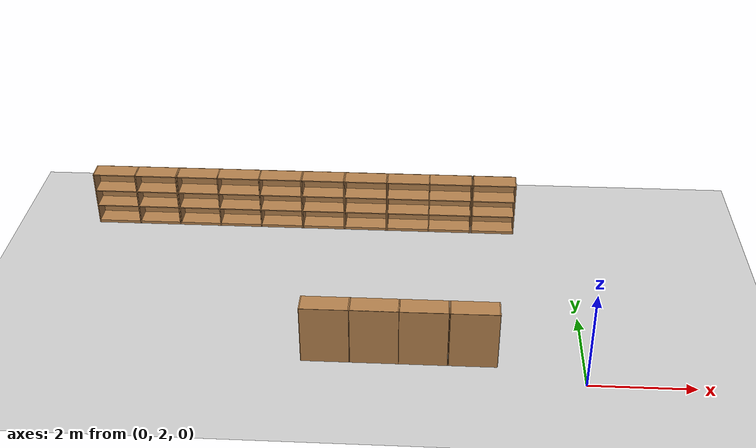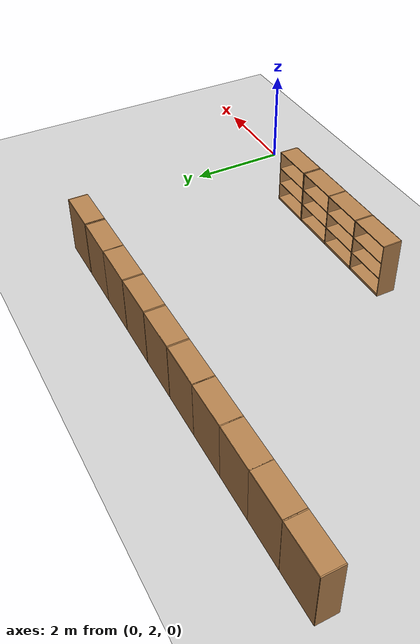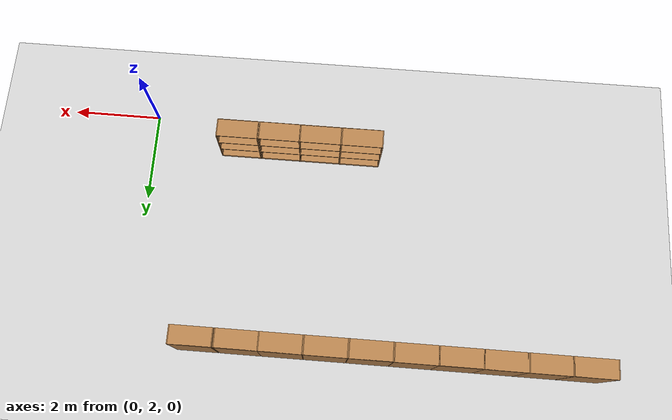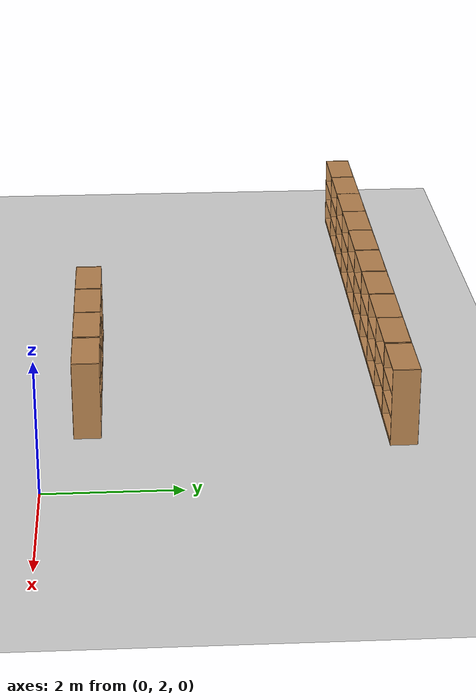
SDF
<sdf version="1.7">
 <world name="default">
  <model name="ground_plane">
   <static>1</static>
   <link name="link">
    <collision name="collision">
     <geometry><plane><normal>0 0 1</normal><size>100 100</size></plane></geometry>
     <surface><friction><ode><mu>100</mu><mu2>50</mu2></ode></friction></surface>
    </collision>
    <visual name="visual">
     <cast_shadows>0</cast_shadows>
     <geometry><plane><normal>0 0 1</normal><size>100 100</size></plane></geometry>
     <material>
      <script><uri>file://media/materials/scripts/gazebo.material</uri><name>Gazebo/Grey</name></script>
     </material>
    </visual>
   </link>
  </model>
  <model name="bookshelf_clone_0_clone_0_clone_clone_clone_0_clone_clone_1_clone_0_clone_0_clone_clone">
   <static>1</static>
   <link name="link">
    <inertial><mass>1</mass></inertial>
    <collision name="back">
     <pose>0 0.005 0.6 0 -0 0</pose>
     <geometry><box><size>0.9 0.01 1.2</size></box></geometry>
    </collision>
    <visual name="visual1">
     <pose>0 0.005 0.6 0 -0 0</pose>
     <geometry><box><size>0.9 0.01 1.2</size></box></geometry>
     <material>
      <script><uri>file://media/materials/scripts/gazebo.material</uri><name>Gazebo/Wood</name></script>
     </material>
    </visual>
    <collision name="left_side">
     <pose>0.45 -0.195 0.6 0 -0 0</pose>
     <geometry><box><size>0.02 0.4 1.2</size></box></geometry>
    </collision>
    <visual name="visual2">
     <pose>0.45 -0.195 0.6 0 -0 0</pose>
     <geometry><box><size>0.02 0.4 1.2</size></box></geometry>
     <material>
      <script><uri>file://media/materials/scripts/gazebo.material</uri><name>Gazebo/Wood</name></script>
     </material>
    </visual>
    <collision name="right_side">
     <pose>-0.45 -0.195 0.6 0 -0 0</pose>
     <geometry><box><size>0.02 0.4 1.2</size></box></geometry>
    </collision>
    <visual name="visual3">
     <pose>-0.45 -0.195 0.6 0 -0 0</pose>
     <geometry><box><size>0.02 0.4 1.2</size></box></geometry>
     <material>
      <script><uri>file://media/materials/scripts/gazebo.material</uri><name>Gazebo/Wood</name></script>
     </material>
    </visual>
    <collision name="bottom">
     <pose>0 -0.195 0.03 0 -0 0</pose>
     <geometry><box><size>0.88 0.4 0.06</size></box></geometry>
    </collision>
    <visual name="visual4">
     <pose>0 -0.195 0.03 0 -0 0</pose>
     <geometry><box><size>0.88 0.4 0.06</size></box></geometry>
     <material>
      <script><uri>file://media/materials/scripts/gazebo.material</uri><name>Gazebo/Wood</name></script>
     </material>
    </visual>
    <collision name="top">
     <pose>0 -0.195 1.19 0 -0 0</pose>
     <geometry><box><size>0.88 0.4 0.02</size></box></geometry>
    </collision>
    <visual name="visual5">
     <pose>0 -0.195 1.19 0 -0 0</pose>
     <geometry><box><size>0.88 0.4 0.02</size></box></geometry>
     <material>
      <script><uri>file://media/materials/scripts/gazebo.material</uri><name>Gazebo/Wood</name></script>
     </material>
    </visual>
    <collision name="low_shelf">
     <pose>0 -0.195 0.43 0 -0 0</pose>
     <geometry><box><size>0.88 0.4 0.02</size></box></geometry>
    </collision>
    <visual name="visual6">
     <pose>0 -0.195 0.43 0 -0 0</pose>
     <geometry><box><size>0.88 0.4 0.02</size></box></geometry>
     <material>
      <script><uri>file://media/materials/scripts/gazebo.material</uri><name>Gazebo/Wood</name></script>
     </material>
    </visual>
    <collision name="high_shelf">
     <pose>0 -0.195 0.8 0 -0 0</pose>
     <geometry><box><size>0.88 0.4 0.02</size></box></geometry>
    </collision>
    <visual name="visual7">
     <pose>0 -0.195 0.8 0 -0 0</pose>
     <geometry><box><size>0.88 0.4 0.02</size></box></geometry>
     <material>
      <script><uri>file://media/materials/scripts/gazebo.material</uri><name>Gazebo/Wood</name></script>
     </material>
    </visual>
   </link>
   <pose>-2.05723 2.43762 0 0 0 -3.14107</pose>
  </model>
  <model name="bookshelf_clone_0_clone_0_clone_clone_clone_0_clone_clone_1_clone_0_clone_0_clone_clone_clone">
   <static>1</static>
   <link name="link">
    <inertial><mass>1</mass></inertial>
    <collision name="back">
     <pose>0 0.005 0.6 0 -0 0</pose>
     <geometry><box><size>0.9 0.01 1.2</size></box></geometry>
    </collision>
    <visual name="visual1">
     <pose>0 0.005 0.6 0 -0 0</pose>
     <geometry><box><size>0.9 0.01 1.2</size></box></geometry>
     <material>
      <script><uri>file://media/materials/scripts/gazebo.material</uri><name>Gazebo/Wood</name></script>
     </material>
    </visual>
    <collision name="left_side">
     <pose>0.45 -0.195 0.6 0 -0 0</pose>
     <geometry><box><size>0.02 0.4 1.2</size></box></geometry>
    </collision>
    <visual name="visual2">
     <pose>0.45 -0.195 0.6 0 -0 0</pose>
     <geometry><box><size>0.02 0.4 1.2</size></box></geometry>
     <material>
      <script><uri>file://media/materials/scripts/gazebo.material</uri><name>Gazebo/Wood</name></script>
     </material>
    </visual>
    <collision name="right_side">
     <pose>-0.45 -0.195 0.6 0 -0 0</pose>
     <geometry><box><size>0.02 0.4 1.2</size></box></geometry>
    </collision>
    <visual name="visual3">
     <pose>-0.45 -0.195 0.6 0 -0 0</pose>
     <geometry><box><size>0.02 0.4 1.2</size></box></geometry>
     <material>
      <script><uri>file://media/materials/scripts/gazebo.material</uri><name>Gazebo/Wood</name></script>
     </material>
    </visual>
    <collision name="bottom">
     <pose>0 -0.195 0.03 0 -0 0</pose>
     <geometry><box><size>0.88 0.4 0.06</size></box></geometry>
    </collision>
    <visual name="visual4">
     <pose>0 -0.195 0.03 0 -0 0</pose>
     <geometry><box><size>0.88 0.4 0.06</size></box></geometry>
     <material>
      <script><uri>file://media/materials/scripts/gazebo.material</uri><name>Gazebo/Wood</name></script>
     </material>
    </visual>
    <collision name="top">
     <pose>0 -0.195 1.19 0 -0 0</pose>
     <geometry><box><size>0.88 0.4 0.02</size></box></geometry>
    </collision>
    <visual name="visual5">
     <pose>0 -0.195 1.19 0 -0 0</pose>
     <geometry><box><size>0.88 0.4 0.02</size></box></geometry>
     <material>
      <script><uri>file://media/materials/scripts/gazebo.material</uri><name>Gazebo/Wood</name></script>
     </material>
    </visual>
    <collision name="low_shelf">
     <pose>0 -0.195 0.43 0 -0 0</pose>
     <geometry><box><size>0.88 0.4 0.02</size></box></geometry>
    </collision>
    <visual name="visual6">
     <pose>0 -0.195 0.43 0 -0 0</pose>
     <geometry><box><size>0.88 0.4 0.02</size></box></geometry>
     <material>
      <script><uri>file://media/materials/scripts/gazebo.material</uri><name>Gazebo/Wood</name></script>
     </material>
    </visual>
    <collision name="high_shelf">
     <pose>0 -0.195 0.8 0 -0 0</pose>
     <geometry><box><size>0.88 0.4 0.02</size></box></geometry>
    </collision>
    <visual name="visual7">
     <pose>0 -0.195 0.8 0 -0 0</pose>
     <geometry><box><size>0.88 0.4 0.02</size></box></geometry>
     <material>
      <script><uri>file://media/materials/scripts/gazebo.material</uri><name>Gazebo/Wood</name></script>
     </material>
    </visual>
   </link>
   <pose>-2.98515 2.43762 0 0 0 -3.14107</pose>
  </model>
  <model name="bookshelf_clone_0_clone_0_clone_clone_clone_0_clone_clone_1_clone_0_clone_0_clone_clone_clone_0">
   <static>1</static>
   <link name="link">
    <inertial><mass>1</mass></inertial>
    <collision name="back">
     <pose>0 0.005 0.6 0 -0 0</pose>
     <geometry><box><size>0.9 0.01 1.2</size></box></geometry>
    </collision>
    <visual name="visual1">
     <pose>0 0.005 0.6 0 -0 0</pose>
     <geometry><box><size>0.9 0.01 1.2</size></box></geometry>
     <material>
      <script><uri>file://media/materials/scripts/gazebo.material</uri><name>Gazebo/Wood</name></script>
     </material>
    </visual>
    <collision name="left_side">
     <pose>0.45 -0.195 0.6 0 -0 0</pose>
     <geometry><box><size>0.02 0.4 1.2</size></box></geometry>
    </collision>
    <visual name="visual2">
     <pose>0.45 -0.195 0.6 0 -0 0</pose>
     <geometry><box><size>0.02 0.4 1.2</size></box></geometry>
     <material>
      <script><uri>file://media/materials/scripts/gazebo.material</uri><name>Gazebo/Wood</name></script>
     </material>
    </visual>
    <collision name="right_side">
     <pose>-0.45 -0.195 0.6 0 -0 0</pose>
     <geometry><box><size>0.02 0.4 1.2</size></box></geometry>
    </collision>
    <visual name="visual3">
     <pose>-0.45 -0.195 0.6 0 -0 0</pose>
     <geometry><box><size>0.02 0.4 1.2</size></box></geometry>
     <material>
      <script><uri>file://media/materials/scripts/gazebo.material</uri><name>Gazebo/Wood</name></script>
     </material>
    </visual>
    <collision name="bottom">
     <pose>0 -0.195 0.03 0 -0 0</pose>
     <geometry><box><size>0.88 0.4 0.06</size></box></geometry>
    </collision>
    <visual name="visual4">
     <pose>0 -0.195 0.03 0 -0 0</pose>
     <geometry><box><size>0.88 0.4 0.06</size></box></geometry>
     <material>
      <script><uri>file://media/materials/scripts/gazebo.material</uri><name>Gazebo/Wood</name></script>
     </material>
    </visual>
    <collision name="top">
     <pose>0 -0.195 1.19 0 -0 0</pose>
     <geometry><box><size>0.88 0.4 0.02</size></box></geometry>
    </collision>
    <visual name="visual5">
     <pose>0 -0.195 1.19 0 -0 0</pose>
     <geometry><box><size>0.88 0.4 0.02</size></box></geometry>
     <material>
      <script><uri>file://media/materials/scripts/gazebo.material</uri><name>Gazebo/Wood</name></script>
     </material>
    </visual>
    <collision name="low_shelf">
     <pose>0 -0.195 0.43 0 -0 0</pose>
     <geometry><box><size>0.88 0.4 0.02</size></box></geometry>
    </collision>
    <visual name="visual6">
     <pose>0 -0.195 0.43 0 -0 0</pose>
     <geometry><box><size>0.88 0.4 0.02</size></box></geometry>
     <material>
      <script><uri>file://media/materials/scripts/gazebo.material</uri><name>Gazebo/Wood</name></script>
     </material>
    </visual>
    <collision name="high_shelf">
     <pose>0 -0.195 0.8 0 -0 0</pose>
     <geometry><box><size>0.88 0.4 0.02</size></box></geometry>
    </collision>
    <visual name="visual7">
     <pose>0 -0.195 0.8 0 -0 0</pose>
     <geometry><box><size>0.88 0.4 0.02</size></box></geometry>
     <material>
      <script><uri>file://media/materials/scripts/gazebo.material</uri><name>Gazebo/Wood</name></script>
     </material>
    </visual>
   </link>
   <pose>-3.89242 2.43762 0 0 0 -3.14107</pose>
  </model>
  <model name="bookshelf_clone_0_clone_0_clone_clone_clone_0_clone_clone_1_clone_0_clone_0_clone_clone_clone_0_clone">
   <static>1</static>
   <link name="link">
    <inertial><mass>1</mass></inertial>
    <collision name="back">
     <pose>0 0.005 0.6 0 -0 0</pose>
     <geometry><box><size>0.9 0.01 1.2</size></box></geometry>
    </collision>
    <visual name="visual1">
     <pose>0 0.005 0.6 0 -0 0</pose>
     <geometry><box><size>0.9 0.01 1.2</size></box></geometry>
     <material>
      <script><uri>file://media/materials/scripts/gazebo.material</uri><name>Gazebo/Wood</name></script>
     </material>
    </visual>
    <collision name="left_side">
     <pose>0.45 -0.195 0.6 0 -0 0</pose>
     <geometry><box><size>0.02 0.4 1.2</size></box></geometry>
    </collision>
    <visual name="visual2">
     <pose>0.45 -0.195 0.6 0 -0 0</pose>
     <geometry><box><size>0.02 0.4 1.2</size></box></geometry>
     <material>
      <script><uri>file://media/materials/scripts/gazebo.material</uri><name>Gazebo/Wood</name></script>
     </material>
    </visual>
    <collision name="right_side">
     <pose>-0.45 -0.195 0.6 0 -0 0</pose>
     <geometry><box><size>0.02 0.4 1.2</size></box></geometry>
    </collision>
    <visual name="visual3">
     <pose>-0.45 -0.195 0.6 0 -0 0</pose>
     <geometry><box><size>0.02 0.4 1.2</size></box></geometry>
     <material>
      <script><uri>file://media/materials/scripts/gazebo.material</uri><name>Gazebo/Wood</name></script>
     </material>
    </visual>
    <collision name="bottom">
     <pose>0 -0.195 0.03 0 -0 0</pose>
     <geometry><box><size>0.88 0.4 0.06</size></box></geometry>
    </collision>
    <visual name="visual4">
     <pose>0 -0.195 0.03 0 -0 0</pose>
     <geometry><box><size>0.88 0.4 0.06</size></box></geometry>
     <material>
      <script><uri>file://media/materials/scripts/gazebo.material</uri><name>Gazebo/Wood</name></script>
     </material>
    </visual>
    <collision name="top">
     <pose>0 -0.195 1.19 0 -0 0</pose>
     <geometry><box><size>0.88 0.4 0.02</size></box></geometry>
    </collision>
    <visual name="visual5">
     <pose>0 -0.195 1.19 0 -0 0</pose>
     <geometry><box><size>0.88 0.4 0.02</size></box></geometry>
     <material>
      <script><uri>file://media/materials/scripts/gazebo.material</uri><name>Gazebo/Wood</name></script>
     </material>
    </visual>
    <collision name="low_shelf">
     <pose>0 -0.195 0.43 0 -0 0</pose>
     <geometry><box><size>0.88 0.4 0.02</size></box></geometry>
    </collision>
    <visual name="visual6">
     <pose>0 -0.195 0.43 0 -0 0</pose>
     <geometry><box><size>0.88 0.4 0.02</size></box></geometry>
     <material>
      <script><uri>file://media/materials/scripts/gazebo.material</uri><name>Gazebo/Wood</name></script>
     </material>
    </visual>
    <collision name="high_shelf">
     <pose>0 -0.195 0.8 0 -0 0</pose>
     <geometry><box><size>0.88 0.4 0.02</size></box></geometry>
    </collision>
    <visual name="visual7">
     <pose>0 -0.195 0.8 0 -0 0</pose>
     <geometry><box><size>0.88 0.4 0.02</size></box></geometry>
     <material>
      <script><uri>file://media/materials/scripts/gazebo.material</uri><name>Gazebo/Wood</name></script>
     </material>
    </visual>
   </link>
   <pose>-4.80715 2.43762 0 0 0 -3.14107</pose>
  </model>
  <model name="bookshelf_clone_0_clone_0_clone_clone_clone_clone_clone_1_clone_clone_clone_clone_clone_clone_clone_clone_clone_clone_0_clone_clone_clone_clone_clone_0_clone_1_clone_0_clone_1_clone_0_clone_clone_clone_clone_clone_clone_0_clone">
   <static>1</static>
   <link name="link">
    <inertial><mass>1</mass></inertial>
    <collision name="back">
     <pose>0 0.005 0.6 0 -0 0</pose>
     <geometry><box><size>0.9 0.01 1.2</size></box></geometry>
    </collision>
    <visual name="visual1">
     <pose>0 0.005 0.6 0 -0 0</pose>
     <geometry><box><size>0.9 0.01 1.2</size></box></geometry>
     <material>
      <script><uri>file://media/materials/scripts/gazebo.material</uri><name>Gazebo/Wood</name></script>
     </material>
    </visual>
    <collision name="left_side">
     <pose>0.45 -0.195 0.6 0 -0 0</pose>
     <geometry><box><size>0.02 0.4 1.2</size></box></geometry>
    </collision>
    <visual name="visual2">
     <pose>0.45 -0.195 0.6 0 -0 0</pose>
     <geometry><box><size>0.02 0.4 1.2</size></box></geometry>
     <material>
      <script><uri>file://media/materials/scripts/gazebo.material</uri><name>Gazebo/Wood</name></script>
     </material>
    </visual>
    <collision name="right_side">
     <pose>-0.45 -0.195 0.6 0 -0 0</pose>
     <geometry><box><size>0.02 0.4 1.2</size></box></geometry>
    </collision>
    <visual name="visual3">
     <pose>-0.45 -0.195 0.6 0 -0 0</pose>
     <geometry><box><size>0.02 0.4 1.2</size></box></geometry>
     <material>
      <script><uri>file://media/materials/scripts/gazebo.material</uri><name>Gazebo/Wood</name></script>
     </material>
    </visual>
    <collision name="bottom">
     <pose>0 -0.195 0.03 0 -0 0</pose>
     <geometry><box><size>0.88 0.4 0.06</size></box></geometry>
    </collision>
    <visual name="visual4">
     <pose>0 -0.195 0.03 0 -0 0</pose>
     <geometry><box><size>0.88 0.4 0.06</size></box></geometry>
     <material>
      <script><uri>file://media/materials/scripts/gazebo.material</uri><name>Gazebo/Wood</name></script>
     </material>
    </visual>
    <collision name="top">
     <pose>0 -0.195 1.19 0 -0 0</pose>
     <geometry><box><size>0.88 0.4 0.02</size></box></geometry>
    </collision>
    <visual name="visual5">
     <pose>0 -0.195 1.19 0 -0 0</pose>
     <geometry><box><size>0.88 0.4 0.02</size></box></geometry>
     <material>
      <script><uri>file://media/materials/scripts/gazebo.material</uri><name>Gazebo/Wood</name></script>
     </material>
    </visual>
    <collision name="low_shelf">
     <pose>0 -0.195 0.43 0 -0 0</pose>
     <geometry><box><size>0.88 0.4 0.02</size></box></geometry>
    </collision>
    <visual name="visual6">
     <pose>0 -0.195 0.43 0 -0 0</pose>
     <geometry><box><size>0.88 0.4 0.02</size></box></geometry>
     <material>
      <script><uri>file://media/materials/scripts/gazebo.material</uri><name>Gazebo/Wood</name></script>
     </material>
    </visual>
    <collision name="high_shelf">
     <pose>0 -0.195 0.8 0 -0 0</pose>
     <geometry><box><size>0.88 0.4 0.02</size></box></geometry>
    </collision>
    <visual name="visual7">
     <pose>0 -0.195 0.8 0 -0 0</pose>
     <geometry><box><size>0.88 0.4 0.02</size></box></geometry>
     <material>
      <script><uri>file://media/materials/scripts/gazebo.material</uri><name>Gazebo/Wood</name></script>
     </material>
    </visual>
   </link>
   <pose>-1.59116 7.38892 0.004614 0 -0 0.000147</pose>
  </model>
  <model name="bookshelf_clone_0_clone_0_clone_clone_clone_clone_clone_1_clone_clone_clone_clone_clone_clone_clone_clone_clone_clone_0_clone_clone_clone_clone_clone_0_clone_1_clone_0_clone_1_clone_0_clone_clone_clone_clone_clone_clone_0_clone_clone">
   <static>1</static>
   <link name="link">
    <inertial><mass>1</mass></inertial>
    <collision name="back">
     <pose>0 0.005 0.6 0 -0 0</pose>
     <geometry><box><size>0.9 0.01 1.2</size></box></geometry>
    </collision>
    <visual name="visual1">
     <pose>0 0.005 0.6 0 -0 0</pose>
     <geometry><box><size>0.9 0.01 1.2</size></box></geometry>
     <material>
      <script><uri>file://media/materials/scripts/gazebo.material</uri><name>Gazebo/Wood</name></script>
     </material>
    </visual>
    <collision name="left_side">
     <pose>0.45 -0.195 0.6 0 -0 0</pose>
     <geometry><box><size>0.02 0.4 1.2</size></box></geometry>
    </collision>
    <visual name="visual2">
     <pose>0.45 -0.195 0.6 0 -0 0</pose>
     <geometry><box><size>0.02 0.4 1.2</size></box></geometry>
     <material>
      <script><uri>file://media/materials/scripts/gazebo.material</uri><name>Gazebo/Wood</name></script>
     </material>
    </visual>
    <collision name="right_side">
     <pose>-0.45 -0.195 0.6 0 -0 0</pose>
     <geometry><box><size>0.02 0.4 1.2</size></box></geometry>
    </collision>
    <visual name="visual3">
     <pose>-0.45 -0.195 0.6 0 -0 0</pose>
     <geometry><box><size>0.02 0.4 1.2</size></box></geometry>
     <material>
      <script><uri>file://media/materials/scripts/gazebo.material</uri><name>Gazebo/Wood</name></script>
     </material>
    </visual>
    <collision name="bottom">
     <pose>0 -0.195 0.03 0 -0 0</pose>
     <geometry><box><size>0.88 0.4 0.06</size></box></geometry>
    </collision>
    <visual name="visual4">
     <pose>0 -0.195 0.03 0 -0 0</pose>
     <geometry><box><size>0.88 0.4 0.06</size></box></geometry>
     <material>
      <script><uri>file://media/materials/scripts/gazebo.material</uri><name>Gazebo/Wood</name></script>
     </material>
    </visual>
    <collision name="top">
     <pose>0 -0.195 1.19 0 -0 0</pose>
     <geometry><box><size>0.88 0.4 0.02</size></box></geometry>
    </collision>
    <visual name="visual5">
     <pose>0 -0.195 1.19 0 -0 0</pose>
     <geometry><box><size>0.88 0.4 0.02</size></box></geometry>
     <material>
      <script><uri>file://media/materials/scripts/gazebo.material</uri><name>Gazebo/Wood</name></script>
     </material>
    </visual>
    <collision name="low_shelf">
     <pose>0 -0.195 0.43 0 -0 0</pose>
     <geometry><box><size>0.88 0.4 0.02</size></box></geometry>
    </collision>
    <visual name="visual6">
     <pose>0 -0.195 0.43 0 -0 0</pose>
     <geometry><box><size>0.88 0.4 0.02</size></box></geometry>
     <material>
      <script><uri>file://media/materials/scripts/gazebo.material</uri><name>Gazebo/Wood</name></script>
     </material>
    </visual>
    <collision name="high_shelf">
     <pose>0 -0.195 0.8 0 -0 0</pose>
     <geometry><box><size>0.88 0.4 0.02</size></box></geometry>
    </collision>
    <visual name="visual7">
     <pose>0 -0.195 0.8 0 -0 0</pose>
     <geometry><box><size>0.88 0.4 0.02</size></box></geometry>
     <material>
      <script><uri>file://media/materials/scripts/gazebo.material</uri><name>Gazebo/Wood</name></script>
     </material>
    </visual>
   </link>
   <pose>-2.52267 7.38892 0.004614 0 -0 0.000147</pose>
  </model>
  <model name="bookshelf_clone_0_clone_0_clone_clone_clone_clone_clone_1_clone_clone_clone_clone_clone_clone_clone_clone_clone_clone_0_clone_clone_clone_clone_clone_0_clone_1_clone_0_clone_1_clone_0_clone_clone_clone_clone_clone_clone_0_clone_clone_clone">
   <static>1</static>
   <link name="link">
    <inertial><mass>1</mass></inertial>
    <collision name="back">
     <pose>0 0.005 0.6 0 -0 0</pose>
     <geometry><box><size>0.9 0.01 1.2</size></box></geometry>
    </collision>
    <visual name="visual1">
     <pose>0 0.005 0.6 0 -0 0</pose>
     <geometry><box><size>0.9 0.01 1.2</size></box></geometry>
     <material>
      <script><uri>file://media/materials/scripts/gazebo.material</uri><name>Gazebo/Wood</name></script>
     </material>
    </visual>
    <collision name="left_side">
     <pose>0.45 -0.195 0.6 0 -0 0</pose>
     <geometry><box><size>0.02 0.4 1.2</size></box></geometry>
    </collision>
    <visual name="visual2">
     <pose>0.45 -0.195 0.6 0 -0 0</pose>
     <geometry><box><size>0.02 0.4 1.2</size></box></geometry>
     <material>
      <script><uri>file://media/materials/scripts/gazebo.material</uri><name>Gazebo/Wood</name></script>
     </material>
    </visual>
    <collision name="right_side">
     <pose>-0.45 -0.195 0.6 0 -0 0</pose>
     <geometry><box><size>0.02 0.4 1.2</size></box></geometry>
    </collision>
    <visual name="visual3">
     <pose>-0.45 -0.195 0.6 0 -0 0</pose>
     <geometry><box><size>0.02 0.4 1.2</size></box></geometry>
     <material>
      <script><uri>file://media/materials/scripts/gazebo.material</uri><name>Gazebo/Wood</name></script>
     </material>
    </visual>
    <collision name="bottom">
     <pose>0 -0.195 0.03 0 -0 0</pose>
     <geometry><box><size>0.88 0.4 0.06</size></box></geometry>
    </collision>
    <visual name="visual4">
     <pose>0 -0.195 0.03 0 -0 0</pose>
     <geometry><box><size>0.88 0.4 0.06</size></box></geometry>
     <material>
      <script><uri>file://media/materials/scripts/gazebo.material</uri><name>Gazebo/Wood</name></script>
     </material>
    </visual>
    <collision name="top">
     <pose>0 -0.195 1.19 0 -0 0</pose>
     <geometry><box><size>0.88 0.4 0.02</size></box></geometry>
    </collision>
    <visual name="visual5">
     <pose>0 -0.195 1.19 0 -0 0</pose>
     <geometry><box><size>0.88 0.4 0.02</size></box></geometry>
     <material>
      <script><uri>file://media/materials/scripts/gazebo.material</uri><name>Gazebo/Wood</name></script>
     </material>
    </visual>
    <collision name="low_shelf">
     <pose>0 -0.195 0.43 0 -0 0</pose>
     <geometry><box><size>0.88 0.4 0.02</size></box></geometry>
    </collision>
    <visual name="visual6">
     <pose>0 -0.195 0.43 0 -0 0</pose>
     <geometry><box><size>0.88 0.4 0.02</size></box></geometry>
     <material>
      <script><uri>file://media/materials/scripts/gazebo.material</uri><name>Gazebo/Wood</name></script>
     </material>
    </visual>
    <collision name="high_shelf">
     <pose>0 -0.195 0.8 0 -0 0</pose>
     <geometry><box><size>0.88 0.4 0.02</size></box></geometry>
    </collision>
    <visual name="visual7">
     <pose>0 -0.195 0.8 0 -0 0</pose>
     <geometry><box><size>0.88 0.4 0.02</size></box></geometry>
     <material>
      <script><uri>file://media/materials/scripts/gazebo.material</uri><name>Gazebo/Wood</name></script>
     </material>
    </visual>
   </link>
   <pose>-3.4231 7.38892 0.004614 0 -0 0.000147</pose>
  </model>
  <model name="bookshelf_clone_0_clone_0_clone_clone_clone_clone_clone_1_clone_clone_clone_clone_clone_clone_clone_clone_clone_clone_0_clone_clone_clone_clone_clone_0_clone_1_clone_0_clone_1_clone_0_clone_clone_clone_clone_clone_clone_0_clone_clone_clone_0">
   <static>1</static>
   <link name="link">
    <inertial><mass>1</mass></inertial>
    <collision name="back">
     <pose>0 0.005 0.6 0 -0 0</pose>
     <geometry><box><size>0.9 0.01 1.2</size></box></geometry>
    </collision>
    <visual name="visual1">
     <pose>0 0.005 0.6 0 -0 0</pose>
     <geometry><box><size>0.9 0.01 1.2</size></box></geometry>
     <material>
      <script><uri>file://media/materials/scripts/gazebo.material</uri><name>Gazebo/Wood</name></script>
     </material>
    </visual>
    <collision name="left_side">
     <pose>0.45 -0.195 0.6 0 -0 0</pose>
     <geometry><box><size>0.02 0.4 1.2</size></box></geometry>
    </collision>
    <visual name="visual2">
     <pose>0.45 -0.195 0.6 0 -0 0</pose>
     <geometry><box><size>0.02 0.4 1.2</size></box></geometry>
     <material>
      <script><uri>file://media/materials/scripts/gazebo.material</uri><name>Gazebo/Wood</name></script>
     </material>
    </visual>
    <collision name="right_side">
     <pose>-0.45 -0.195 0.6 0 -0 0</pose>
     <geometry><box><size>0.02 0.4 1.2</size></box></geometry>
    </collision>
    <visual name="visual3">
     <pose>-0.45 -0.195 0.6 0 -0 0</pose>
     <geometry><box><size>0.02 0.4 1.2</size></box></geometry>
     <material>
      <script><uri>file://media/materials/scripts/gazebo.material</uri><name>Gazebo/Wood</name></script>
     </material>
    </visual>
    <collision name="bottom">
     <pose>0 -0.195 0.03 0 -0 0</pose>
     <geometry><box><size>0.88 0.4 0.06</size></box></geometry>
    </collision>
    <visual name="visual4">
     <pose>0 -0.195 0.03 0 -0 0</pose>
     <geometry><box><size>0.88 0.4 0.06</size></box></geometry>
     <material>
      <script><uri>file://media/materials/scripts/gazebo.material</uri><name>Gazebo/Wood</name></script>
     </material>
    </visual>
    <collision name="top">
     <pose>0 -0.195 1.19 0 -0 0</pose>
     <geometry><box><size>0.88 0.4 0.02</size></box></geometry>
    </collision>
    <visual name="visual5">
     <pose>0 -0.195 1.19 0 -0 0</pose>
     <geometry><box><size>0.88 0.4 0.02</size></box></geometry>
     <material>
      <script><uri>file://media/materials/scripts/gazebo.material</uri><name>Gazebo/Wood</name></script>
     </material>
    </visual>
    <collision name="low_shelf">
     <pose>0 -0.195 0.43 0 -0 0</pose>
     <geometry><box><size>0.88 0.4 0.02</size></box></geometry>
    </collision>
    <visual name="visual6">
     <pose>0 -0.195 0.43 0 -0 0</pose>
     <geometry><box><size>0.88 0.4 0.02</size></box></geometry>
     <material>
      <script><uri>file://media/materials/scripts/gazebo.material</uri><name>Gazebo/Wood</name></script>
     </material>
    </visual>
    <collision name="high_shelf">
     <pose>0 -0.195 0.8 0 -0 0</pose>
     <geometry><box><size>0.88 0.4 0.02</size></box></geometry>
    </collision>
    <visual name="visual7">
     <pose>0 -0.195 0.8 0 -0 0</pose>
     <geometry><box><size>0.88 0.4 0.02</size></box></geometry>
     <material>
      <script><uri>file://media/materials/scripts/gazebo.material</uri><name>Gazebo/Wood</name></script>
     </material>
    </visual>
   </link>
   <pose>-4.34011 7.38892 0.004614 0 -0 0.000147</pose>
  </model>
  <model name="bookshelf_clone_0_clone_0_clone_clone_clone_clone_clone_1_clone_clone_clone_clone_clone_clone_clone_clone_clone_clone_0_clone_clone_clone_clone_clone_0_clone_1_clone_0_clone_1_clone_0_clone_clone_clone_clone_clone_clone_0_clone_clone_clone_1">
   <static>1</static>
   <link name="link">
    <inertial><mass>1</mass></inertial>
    <collision name="back">
     <pose>0 0.005 0.6 0 -0 0</pose>
     <geometry><box><size>0.9 0.01 1.2</size></box></geometry>
    </collision>
    <visual name="visual1">
     <pose>0 0.005 0.6 0 -0 0</pose>
     <geometry><box><size>0.9 0.01 1.2</size></box></geometry>
     <material>
      <script><uri>file://media/materials/scripts/gazebo.material</uri><name>Gazebo/Wood</name></script>
     </material>
    </visual>
    <collision name="left_side">
     <pose>0.45 -0.195 0.6 0 -0 0</pose>
     <geometry><box><size>0.02 0.4 1.2</size></box></geometry>
    </collision>
    <visual name="visual2">
     <pose>0.45 -0.195 0.6 0 -0 0</pose>
     <geometry><box><size>0.02 0.4 1.2</size></box></geometry>
     <material>
      <script><uri>file://media/materials/scripts/gazebo.material</uri><name>Gazebo/Wood</name></script>
     </material>
    </visual>
    <collision name="right_side">
     <pose>-0.45 -0.195 0.6 0 -0 0</pose>
     <geometry><box><size>0.02 0.4 1.2</size></box></geometry>
    </collision>
    <visual name="visual3">
     <pose>-0.45 -0.195 0.6 0 -0 0</pose>
     <geometry><box><size>0.02 0.4 1.2</size></box></geometry>
     <material>
      <script><uri>file://media/materials/scripts/gazebo.material</uri><name>Gazebo/Wood</name></script>
     </material>
    </visual>
    <collision name="bottom">
     <pose>0 -0.195 0.03 0 -0 0</pose>
     <geometry><box><size>0.88 0.4 0.06</size></box></geometry>
    </collision>
    <visual name="visual4">
     <pose>0 -0.195 0.03 0 -0 0</pose>
     <geometry><box><size>0.88 0.4 0.06</size></box></geometry>
     <material>
      <script><uri>file://media/materials/scripts/gazebo.material</uri><name>Gazebo/Wood</name></script>
     </material>
    </visual>
    <collision name="top">
     <pose>0 -0.195 1.19 0 -0 0</pose>
     <geometry><box><size>0.88 0.4 0.02</size></box></geometry>
    </collision>
    <visual name="visual5">
     <pose>0 -0.195 1.19 0 -0 0</pose>
     <geometry><box><size>0.88 0.4 0.02</size></box></geometry>
     <material>
      <script><uri>file://media/materials/scripts/gazebo.material</uri><name>Gazebo/Wood</name></script>
     </material>
    </visual>
    <collision name="low_shelf">
     <pose>0 -0.195 0.43 0 -0 0</pose>
     <geometry><box><size>0.88 0.4 0.02</size></box></geometry>
    </collision>
    <visual name="visual6">
     <pose>0 -0.195 0.43 0 -0 0</pose>
     <geometry><box><size>0.88 0.4 0.02</size></box></geometry>
     <material>
      <script><uri>file://media/materials/scripts/gazebo.material</uri><name>Gazebo/Wood</name></script>
     </material>
    </visual>
    <collision name="high_shelf">
     <pose>0 -0.195 0.8 0 -0 0</pose>
     <geometry><box><size>0.88 0.4 0.02</size></box></geometry>
    </collision>
    <visual name="visual7">
     <pose>0 -0.195 0.8 0 -0 0</pose>
     <geometry><box><size>0.88 0.4 0.02</size></box></geometry>
     <material>
      <script><uri>file://media/materials/scripts/gazebo.material</uri><name>Gazebo/Wood</name></script>
     </material>
    </visual>
   </link>
   <pose>-5.25907 7.38892 0.004614 0 -0 0.000147</pose>
  </model>
  <model name="bookshelf_clone_0_clone_0_clone_clone_clone_clone_clone_1_clone_clone_clone_clone_clone_clone_clone_clone_clone_clone_0_clone_clone_clone_clone_clone_0_clone_1_clone_0_clone_1_clone_0_clone_clone_clone_clone_clone_clone_0_clone_clone_clone_2">
   <static>1</static>
   <link name="link">
    <inertial><mass>1</mass></inertial>
    <collision name="back">
     <pose>0 0.005 0.6 0 -0 0</pose>
     <geometry><box><size>0.9 0.01 1.2</size></box></geometry>
    </collision>
    <visual name="visual1">
     <pose>0 0.005 0.6 0 -0 0</pose>
     <geometry><box><size>0.9 0.01 1.2</size></box></geometry>
     <material>
      <script><uri>file://media/materials/scripts/gazebo.material</uri><name>Gazebo/Wood</name></script>
     </material>
    </visual>
    <collision name="left_side">
     <pose>0.45 -0.195 0.6 0 -0 0</pose>
     <geometry><box><size>0.02 0.4 1.2</size></box></geometry>
    </collision>
    <visual name="visual2">
     <pose>0.45 -0.195 0.6 0 -0 0</pose>
     <geometry><box><size>0.02 0.4 1.2</size></box></geometry>
     <material>
      <script><uri>file://media/materials/scripts/gazebo.material</uri><name>Gazebo/Wood</name></script>
     </material>
    </visual>
    <collision name="right_side">
     <pose>-0.45 -0.195 0.6 0 -0 0</pose>
     <geometry><box><size>0.02 0.4 1.2</size></box></geometry>
    </collision>
    <visual name="visual3">
     <pose>-0.45 -0.195 0.6 0 -0 0</pose>
     <geometry><box><size>0.02 0.4 1.2</size></box></geometry>
     <material>
      <script><uri>file://media/materials/scripts/gazebo.material</uri><name>Gazebo/Wood</name></script>
     </material>
    </visual>
    <collision name="bottom">
     <pose>0 -0.195 0.03 0 -0 0</pose>
     <geometry><box><size>0.88 0.4 0.06</size></box></geometry>
    </collision>
    <visual name="visual4">
     <pose>0 -0.195 0.03 0 -0 0</pose>
     <geometry><box><size>0.88 0.4 0.06</size></box></geometry>
     <material>
      <script><uri>file://media/materials/scripts/gazebo.material</uri><name>Gazebo/Wood</name></script>
     </material>
    </visual>
    <collision name="top">
     <pose>0 -0.195 1.19 0 -0 0</pose>
     <geometry><box><size>0.88 0.4 0.02</size></box></geometry>
    </collision>
    <visual name="visual5">
     <pose>0 -0.195 1.19 0 -0 0</pose>
     <geometry><box><size>0.88 0.4 0.02</size></box></geometry>
     <material>
      <script><uri>file://media/materials/scripts/gazebo.material</uri><name>Gazebo/Wood</name></script>
     </material>
    </visual>
    <collision name="low_shelf">
     <pose>0 -0.195 0.43 0 -0 0</pose>
     <geometry><box><size>0.88 0.4 0.02</size></box></geometry>
    </collision>
    <visual name="visual6">
     <pose>0 -0.195 0.43 0 -0 0</pose>
     <geometry><box><size>0.88 0.4 0.02</size></box></geometry>
     <material>
      <script><uri>file://media/materials/scripts/gazebo.material</uri><name>Gazebo/Wood</name></script>
     </material>
    </visual>
    <collision name="high_shelf">
     <pose>0 -0.195 0.8 0 -0 0</pose>
     <geometry><box><size>0.88 0.4 0.02</size></box></geometry>
    </collision>
    <visual name="visual7">
     <pose>0 -0.195 0.8 0 -0 0</pose>
     <geometry><box><size>0.88 0.4 0.02</size></box></geometry>
     <material>
      <script><uri>file://media/materials/scripts/gazebo.material</uri><name>Gazebo/Wood</name></script>
     </material>
    </visual>
   </link>
   <pose>-6.17581 7.38892 0.004614 0 -0 0.000147</pose>
  </model>
  <model name="bookshelf_clone_0_clone_0_clone_clone_clone_clone_clone_1_clone_clone_clone_clone_clone_clone_clone_clone_clone_clone_0_clone_clone_clone_clone_clone_0_clone_1_clone_0_clone_1_clone_0_clone_clone_clone_clone_clone_clone_0_clone_clone_clone_3">
   <static>1</static>
   <link name="link">
    <inertial><mass>1</mass></inertial>
    <collision name="back">
     <pose>0 0.005 0.6 0 -0 0</pose>
     <geometry><box><size>0.9 0.01 1.2</size></box></geometry>
    </collision>
    <visual name="visual1">
     <pose>0 0.005 0.6 0 -0 0</pose>
     <geometry><box><size>0.9 0.01 1.2</size></box></geometry>
     <material>
      <script><uri>file://media/materials/scripts/gazebo.material</uri><name>Gazebo/Wood</name></script>
     </material>
    </visual>
    <collision name="left_side">
     <pose>0.45 -0.195 0.6 0 -0 0</pose>
     <geometry><box><size>0.02 0.4 1.2</size></box></geometry>
    </collision>
    <visual name="visual2">
     <pose>0.45 -0.195 0.6 0 -0 0</pose>
     <geometry><box><size>0.02 0.4 1.2</size></box></geometry>
     <material>
      <script><uri>file://media/materials/scripts/gazebo.material</uri><name>Gazebo/Wood</name></script>
     </material>
    </visual>
    <collision name="right_side">
     <pose>-0.45 -0.195 0.6 0 -0 0</pose>
     <geometry><box><size>0.02 0.4 1.2</size></box></geometry>
    </collision>
    <visual name="visual3">
     <pose>-0.45 -0.195 0.6 0 -0 0</pose>
     <geometry><box><size>0.02 0.4 1.2</size></box></geometry>
     <material>
      <script><uri>file://media/materials/scripts/gazebo.material</uri><name>Gazebo/Wood</name></script>
     </material>
    </visual>
    <collision name="bottom">
     <pose>0 -0.195 0.03 0 -0 0</pose>
     <geometry><box><size>0.88 0.4 0.06</size></box></geometry>
    </collision>
    <visual name="visual4">
     <pose>0 -0.195 0.03 0 -0 0</pose>
     <geometry><box><size>0.88 0.4 0.06</size></box></geometry>
     <material>
      <script><uri>file://media/materials/scripts/gazebo.material</uri><name>Gazebo/Wood</name></script>
     </material>
    </visual>
    <collision name="top">
     <pose>0 -0.195 1.19 0 -0 0</pose>
     <geometry><box><size>0.88 0.4 0.02</size></box></geometry>
    </collision>
    <visual name="visual5">
     <pose>0 -0.195 1.19 0 -0 0</pose>
     <geometry><box><size>0.88 0.4 0.02</size></box></geometry>
     <material>
      <script><uri>file://media/materials/scripts/gazebo.material</uri><name>Gazebo/Wood</name></script>
     </material>
    </visual>
    <collision name="low_shelf">
     <pose>0 -0.195 0.43 0 -0 0</pose>
     <geometry><box><size>0.88 0.4 0.02</size></box></geometry>
    </collision>
    <visual name="visual6">
     <pose>0 -0.195 0.43 0 -0 0</pose>
     <geometry><box><size>0.88 0.4 0.02</size></box></geometry>
     <material>
      <script><uri>file://media/materials/scripts/gazebo.material</uri><name>Gazebo/Wood</name></script>
     </material>
    </visual>
    <collision name="high_shelf">
     <pose>0 -0.195 0.8 0 -0 0</pose>
     <geometry><box><size>0.88 0.4 0.02</size></box></geometry>
    </collision>
    <visual name="visual7">
     <pose>0 -0.195 0.8 0 -0 0</pose>
     <geometry><box><size>0.88 0.4 0.02</size></box></geometry>
     <material>
      <script><uri>file://media/materials/scripts/gazebo.material</uri><name>Gazebo/Wood</name></script>
     </material>
    </visual>
   </link>
   <pose>-7.0784 7.38892 0.004614 0 -0 0.000147</pose>
  </model>
  <model name="bookshelf_clone_0_clone_0_clone_clone_clone_clone_clone_1_clone_clone_clone_clone_clone_clone_clone_clone_clone_clone_0_clone_clone_clone_clone_clone_0_clone_1_clone_0_clone_1_clone_0_clone_clone_clone_clone_clone_clone_0_clone_clone_clone_4">
   <static>1</static>
   <link name="link">
    <inertial><mass>1</mass></inertial>
    <collision name="back">
     <pose>0 0.005 0.6 0 -0 0</pose>
     <geometry><box><size>0.9 0.01 1.2</size></box></geometry>
    </collision>
    <visual name="visual1">
     <pose>0 0.005 0.6 0 -0 0</pose>
     <geometry><box><size>0.9 0.01 1.2</size></box></geometry>
     <material>
      <script><uri>file://media/materials/scripts/gazebo.material</uri><name>Gazebo/Wood</name></script>
     </material>
    </visual>
    <collision name="left_side">
     <pose>0.45 -0.195 0.6 0 -0 0</pose>
     <geometry><box><size>0.02 0.4 1.2</size></box></geometry>
    </collision>
    <visual name="visual2">
     <pose>0.45 -0.195 0.6 0 -0 0</pose>
     <geometry><box><size>0.02 0.4 1.2</size></box></geometry>
     <material>
      <script><uri>file://media/materials/scripts/gazebo.material</uri><name>Gazebo/Wood</name></script>
     </material>
    </visual>
    <collision name="right_side">
     <pose>-0.45 -0.195 0.6 0 -0 0</pose>
     <geometry><box><size>0.02 0.4 1.2</size></box></geometry>
    </collision>
    <visual name="visual3">
     <pose>-0.45 -0.195 0.6 0 -0 0</pose>
     <geometry><box><size>0.02 0.4 1.2</size></box></geometry>
     <material>
      <script><uri>file://media/materials/scripts/gazebo.material</uri><name>Gazebo/Wood</name></script>
     </material>
    </visual>
    <collision name="bottom">
     <pose>0 -0.195 0.03 0 -0 0</pose>
     <geometry><box><size>0.88 0.4 0.06</size></box></geometry>
    </collision>
    <visual name="visual4">
     <pose>0 -0.195 0.03 0 -0 0</pose>
     <geometry><box><size>0.88 0.4 0.06</size></box></geometry>
     <material>
      <script><uri>file://media/materials/scripts/gazebo.material</uri><name>Gazebo/Wood</name></script>
     </material>
    </visual>
    <collision name="top">
     <pose>0 -0.195 1.19 0 -0 0</pose>
     <geometry><box><size>0.88 0.4 0.02</size></box></geometry>
    </collision>
    <visual name="visual5">
     <pose>0 -0.195 1.19 0 -0 0</pose>
     <geometry><box><size>0.88 0.4 0.02</size></box></geometry>
     <material>
      <script><uri>file://media/materials/scripts/gazebo.material</uri><name>Gazebo/Wood</name></script>
     </material>
    </visual>
    <collision name="low_shelf">
     <pose>0 -0.195 0.43 0 -0 0</pose>
     <geometry><box><size>0.88 0.4 0.02</size></box></geometry>
    </collision>
    <visual name="visual6">
     <pose>0 -0.195 0.43 0 -0 0</pose>
     <geometry><box><size>0.88 0.4 0.02</size></box></geometry>
     <material>
      <script><uri>file://media/materials/scripts/gazebo.material</uri><name>Gazebo/Wood</name></script>
     </material>
    </visual>
    <collision name="high_shelf">
     <pose>0 -0.195 0.8 0 -0 0</pose>
     <geometry><box><size>0.88 0.4 0.02</size></box></geometry>
    </collision>
    <visual name="visual7">
     <pose>0 -0.195 0.8 0 -0 0</pose>
     <geometry><box><size>0.88 0.4 0.02</size></box></geometry>
     <material>
      <script><uri>file://media/materials/scripts/gazebo.material</uri><name>Gazebo/Wood</name></script>
     </material>
    </visual>
   </link>
   <pose>-7.97834 7.38892 0.004614 0 -0 0.000147</pose>
  </model>
  <model name="bookshelf_clone_0_clone_0_clone_clone_clone_clone_clone_1_clone_clone_clone_clone_clone_clone_clone_clone_clone_clone_0_clone_clone_clone_clone_clone_0_clone_1_clone_0_clone_1_clone_0_clone_clone_clone_clone_clone_clone_0_clone_clone_clone_5">
   <static>1</static>
   <link name="link">
    <inertial><mass>1</mass></inertial>
    <collision name="back">
     <pose>0 0.005 0.6 0 -0 0</pose>
     <geometry><box><size>0.9 0.01 1.2</size></box></geometry>
    </collision>
    <visual name="visual1">
     <pose>0 0.005 0.6 0 -0 0</pose>
     <geometry><box><size>0.9 0.01 1.2</size></box></geometry>
     <material>
      <script><uri>file://media/materials/scripts/gazebo.material</uri><name>Gazebo/Wood</name></script>
     </material>
    </visual>
    <collision name="left_side">
     <pose>0.45 -0.195 0.6 0 -0 0</pose>
     <geometry><box><size>0.02 0.4 1.2</size></box></geometry>
    </collision>
    <visual name="visual2">
     <pose>0.45 -0.195 0.6 0 -0 0</pose>
     <geometry><box><size>0.02 0.4 1.2</size></box></geometry>
     <material>
      <script><uri>file://media/materials/scripts/gazebo.material</uri><name>Gazebo/Wood</name></script>
     </material>
    </visual>
    <collision name="right_side">
     <pose>-0.45 -0.195 0.6 0 -0 0</pose>
     <geometry><box><size>0.02 0.4 1.2</size></box></geometry>
    </collision>
    <visual name="visual3">
     <pose>-0.45 -0.195 0.6 0 -0 0</pose>
     <geometry><box><size>0.02 0.4 1.2</size></box></geometry>
     <material>
      <script><uri>file://media/materials/scripts/gazebo.material</uri><name>Gazebo/Wood</name></script>
     </material>
    </visual>
    <collision name="bottom">
     <pose>0 -0.195 0.03 0 -0 0</pose>
     <geometry><box><size>0.88 0.4 0.06</size></box></geometry>
    </collision>
    <visual name="visual4">
     <pose>0 -0.195 0.03 0 -0 0</pose>
     <geometry><box><size>0.88 0.4 0.06</size></box></geometry>
     <material>
      <script><uri>file://media/materials/scripts/gazebo.material</uri><name>Gazebo/Wood</name></script>
     </material>
    </visual>
    <collision name="top">
     <pose>0 -0.195 1.19 0 -0 0</pose>
     <geometry><box><size>0.88 0.4 0.02</size></box></geometry>
    </collision>
    <visual name="visual5">
     <pose>0 -0.195 1.19 0 -0 0</pose>
     <geometry><box><size>0.88 0.4 0.02</size></box></geometry>
     <material>
      <script><uri>file://media/materials/scripts/gazebo.material</uri><name>Gazebo/Wood</name></script>
     </material>
    </visual>
    <collision name="low_shelf">
     <pose>0 -0.195 0.43 0 -0 0</pose>
     <geometry><box><size>0.88 0.4 0.02</size></box></geometry>
    </collision>
    <visual name="visual6">
     <pose>0 -0.195 0.43 0 -0 0</pose>
     <geometry><box><size>0.88 0.4 0.02</size></box></geometry>
     <material>
      <script><uri>file://media/materials/scripts/gazebo.material</uri><name>Gazebo/Wood</name></script>
     </material>
    </visual>
    <collision name="high_shelf">
     <pose>0 -0.195 0.8 0 -0 0</pose>
     <geometry><box><size>0.88 0.4 0.02</size></box></geometry>
    </collision>
    <visual name="visual7">
     <pose>0 -0.195 0.8 0 -0 0</pose>
     <geometry><box><size>0.88 0.4 0.02</size></box></geometry>
     <material>
      <script><uri>file://media/materials/scripts/gazebo.material</uri><name>Gazebo/Wood</name></script>
     </material>
    </visual>
   </link>
   <pose>-8.85254 7.38892 0.004614 0 -0 0.000147</pose>
  </model>
  <model name="bookshelf_clone_0_clone_0_clone_clone_clone_clone_clone_1_clone_clone_clone_clone_clone_clone_clone_clone_clone_clone_0_clone_clone_clone_clone_clone_0_clone_1_clone_0_clone_1_clone_0_clone_clone_clone_clone_clone_clone_0_clone_clone_clone_6">
   <static>1</static>
   <link name="link">
    <inertial><mass>1</mass></inertial>
    <collision name="back">
     <pose>0 0.005 0.6 0 -0 0</pose>
     <geometry><box><size>0.9 0.01 1.2</size></box></geometry>
    </collision>
    <visual name="visual1">
     <pose>0 0.005 0.6 0 -0 0</pose>
     <geometry><box><size>0.9 0.01 1.2</size></box></geometry>
     <material>
      <script><uri>file://media/materials/scripts/gazebo.material</uri><name>Gazebo/Wood</name></script>
     </material>
    </visual>
    <collision name="left_side">
     <pose>0.45 -0.195 0.6 0 -0 0</pose>
     <geometry><box><size>0.02 0.4 1.2</size></box></geometry>
    </collision>
    <visual name="visual2">
     <pose>0.45 -0.195 0.6 0 -0 0</pose>
     <geometry><box><size>0.02 0.4 1.2</size></box></geometry>
     <material>
      <script><uri>file://media/materials/scripts/gazebo.material</uri><name>Gazebo/Wood</name></script>
     </material>
    </visual>
    <collision name="right_side">
     <pose>-0.45 -0.195 0.6 0 -0 0</pose>
     <geometry><box><size>0.02 0.4 1.2</size></box></geometry>
    </collision>
    <visual name="visual3">
     <pose>-0.45 -0.195 0.6 0 -0 0</pose>
     <geometry><box><size>0.02 0.4 1.2</size></box></geometry>
     <material>
      <script><uri>file://media/materials/scripts/gazebo.material</uri><name>Gazebo/Wood</name></script>
     </material>
    </visual>
    <collision name="bottom">
     <pose>0 -0.195 0.03 0 -0 0</pose>
     <geometry><box><size>0.88 0.4 0.06</size></box></geometry>
    </collision>
    <visual name="visual4">
     <pose>0 -0.195 0.03 0 -0 0</pose>
     <geometry><box><size>0.88 0.4 0.06</size></box></geometry>
     <material>
      <script><uri>file://media/materials/scripts/gazebo.material</uri><name>Gazebo/Wood</name></script>
     </material>
    </visual>
    <collision name="top">
     <pose>0 -0.195 1.19 0 -0 0</pose>
     <geometry><box><size>0.88 0.4 0.02</size></box></geometry>
    </collision>
    <visual name="visual5">
     <pose>0 -0.195 1.19 0 -0 0</pose>
     <geometry><box><size>0.88 0.4 0.02</size></box></geometry>
     <material>
      <script><uri>file://media/materials/scripts/gazebo.material</uri><name>Gazebo/Wood</name></script>
     </material>
    </visual>
    <collision name="low_shelf">
     <pose>0 -0.195 0.43 0 -0 0</pose>
     <geometry><box><size>0.88 0.4 0.02</size></box></geometry>
    </collision>
    <visual name="visual6">
     <pose>0 -0.195 0.43 0 -0 0</pose>
     <geometry><box><size>0.88 0.4 0.02</size></box></geometry>
     <material>
      <script><uri>file://media/materials/scripts/gazebo.material</uri><name>Gazebo/Wood</name></script>
     </material>
    </visual>
    <collision name="high_shelf">
     <pose>0 -0.195 0.8 0 -0 0</pose>
     <geometry><box><size>0.88 0.4 0.02</size></box></geometry>
    </collision>
    <visual name="visual7">
     <pose>0 -0.195 0.8 0 -0 0</pose>
     <geometry><box><size>0.88 0.4 0.02</size></box></geometry>
     <material>
      <script><uri>file://media/materials/scripts/gazebo.material</uri><name>Gazebo/Wood</name></script>
     </material>
    </visual>
   </link>
   <pose>-9.7606 7.38892 0.004614 0 -0 0.000147</pose>
  </model>
 </world>
</sdf>
